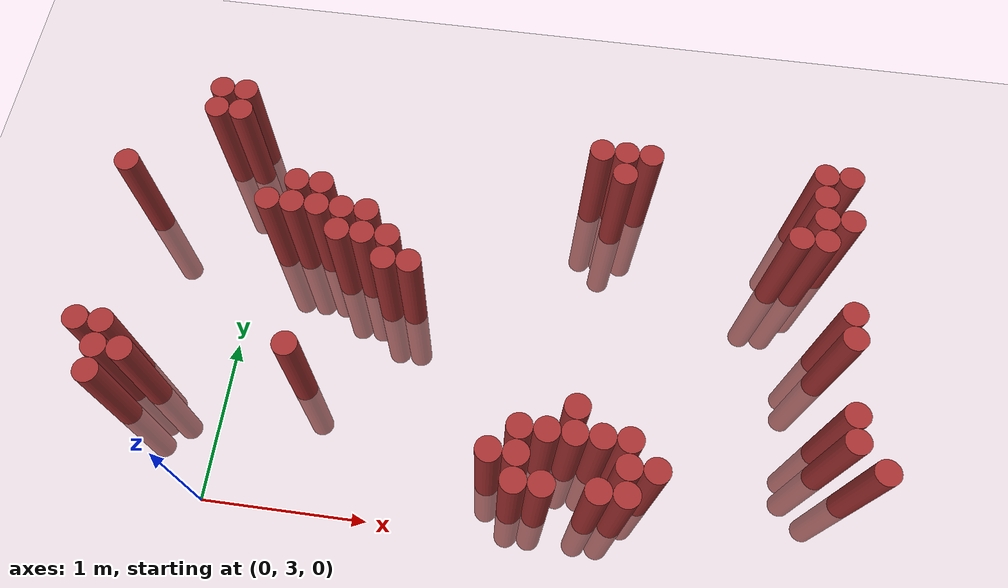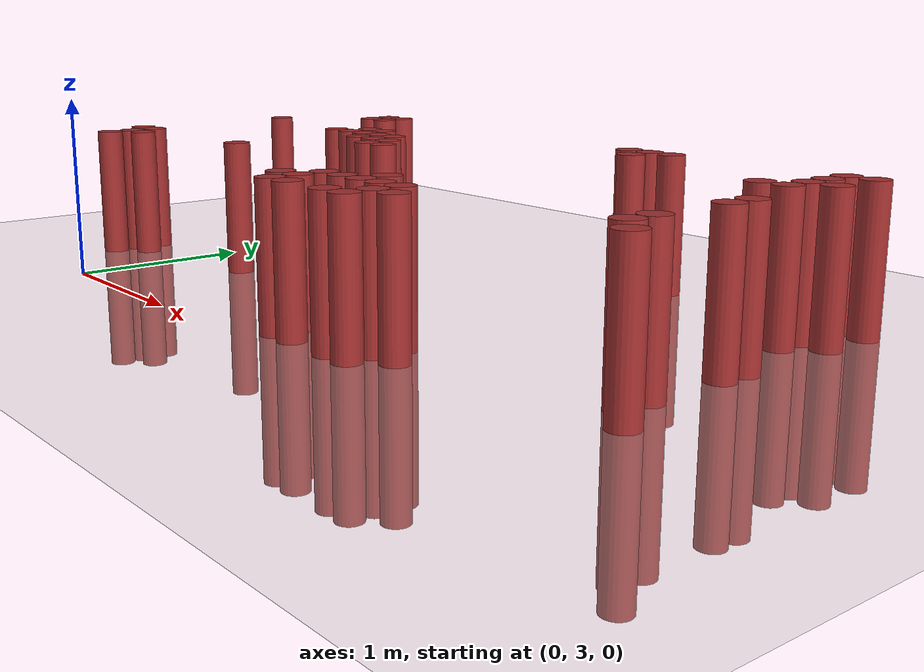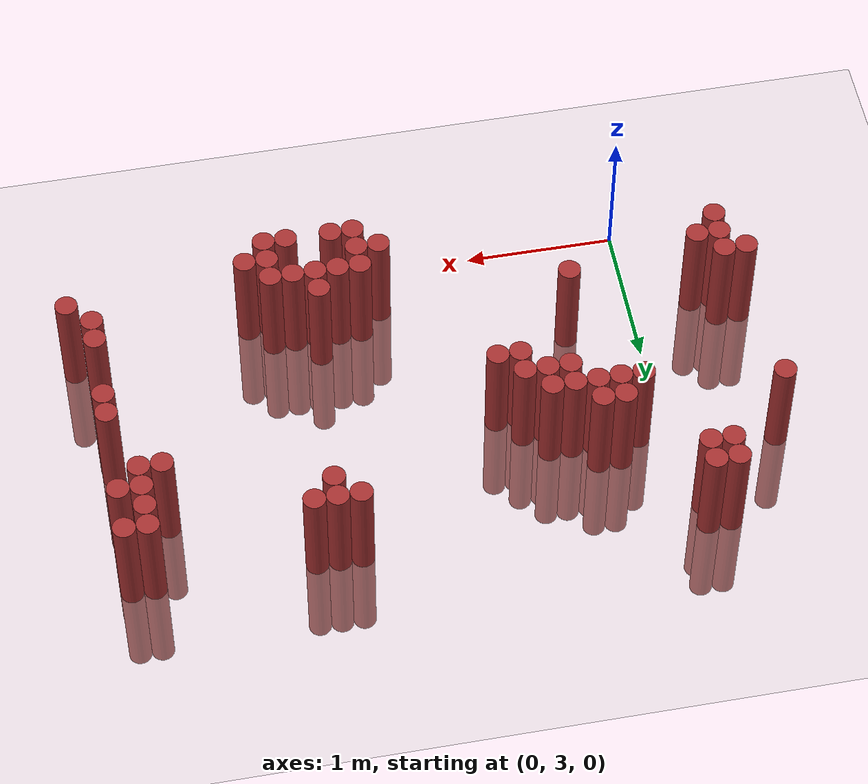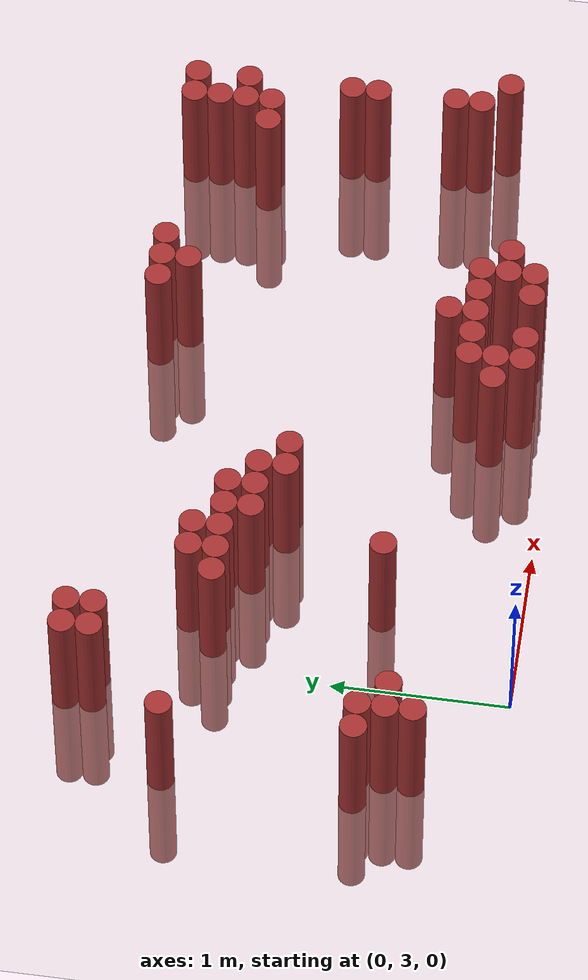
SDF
<sdf version="1.6">
 <world name="default">
  <model name="ground_plane">
   <static>1</static>
   <link name="link">
    <collision name="collision">
     <geometry><plane><normal>0 0 1</normal><size>100 100</size></plane></geometry>
     <surface><friction><ode><mu>100</mu><mu2>50</mu2></ode></friction></surface>
    </collision>
    <visual name="visual">
     <cast_shadows>0</cast_shadows>
     <geometry><plane><normal>0 0 1</normal><size>100 100</size></plane></geometry>
     <material>
      <script><uri>file://media/materials/scripts/gazebo.material</uri><name>Gazebo/Grey</name></script>
     </material>
    </visual>
   </link>
  </model>
  <model name="unit_cylinder_334">
   <static>1</static>
   <pose>-0.725000 3.775000 0.000000 0.000000 0.000000 0.000000</pose>
   <link name="link">
    <inertial>
     <mass>1</mass>
     <inertia><ixx>0.145833</ixx><ixy>0</ixy><ixz>0</ixz><iyy>0.145833</iyy><iyz>0</iyz><izz>0.125</izz></inertia>
    </inertial>
    <collision name="collision">
     <geometry><cylinder><radius>0.075000</radius><length>1.5</length></cylinder></geometry>
    </collision>
    <visual name="visual">
     <geometry><cylinder><radius>0.075000</radius><length>1.5</length></cylinder></geometry>
     <material>
      <ambient>0.648000 0.192000 0.192000 1</ambient>
      <diffuse>0.648000 0.192000 0.192000 1</diffuse>
     </material>
     <material>
      <script><name>Gazebo/Grey</name><uri>file://media/materials/scripts/gazebo.material</uri></script>
     </material>
    </visual>
   </link>
  </model>
  <model name="unit_cylinder_335">
   <static>1</static>
   <pose>-0.725000 4.825000 0.000000 0.000000 0.000000 0.000000</pose>
   <link name="link">
    <inertial>
     <mass>1</mass>
     <inertia><ixx>0.145833</ixx><ixy>0</ixy><ixz>0</ixz><iyy>0.145833</iyy><iyz>0</iyz><izz>0.125</izz></inertia>
    </inertial>
    <collision name="collision">
     <geometry><cylinder><radius>0.075000</radius><length>1.5</length></cylinder></geometry>
    </collision>
    <visual name="visual">
     <geometry><cylinder><radius>0.075000</radius><length>1.5</length></cylinder></geometry>
     <material>
      <ambient>0.648000 0.192000 0.192000 1</ambient>
      <diffuse>0.648000 0.192000 0.192000 1</diffuse>
     </material>
     <material>
      <script><name>Gazebo/Grey</name><uri>file://media/materials/scripts/gazebo.material</uri></script>
     </material>
    </visual>
   </link>
  </model>
  <model name="unit_cylinder_339">
   <static>1</static>
   <pose>-0.575000 3.475000 0.000000 0.000000 0.000000 0.000000</pose>
   <link name="link">
    <inertial>
     <mass>1</mass>
     <inertia><ixx>0.145833</ixx><ixy>0</ixy><ixz>0</ixz><iyy>0.145833</iyy><iyz>0</iyz><izz>0.125</izz></inertia>
    </inertial>
    <collision name="collision">
     <geometry><cylinder><radius>0.075000</radius><length>1.5</length></cylinder></geometry>
    </collision>
    <visual name="visual">
     <geometry><cylinder><radius>0.075000</radius><length>1.5</length></cylinder></geometry>
     <material>
      <ambient>0.648000 0.192000 0.192000 1</ambient>
      <diffuse>0.648000 0.192000 0.192000 1</diffuse>
     </material>
     <material>
      <script><name>Gazebo/Grey</name><uri>file://media/materials/scripts/gazebo.material</uri></script>
     </material>
    </visual>
   </link>
  </model>
  <model name="unit_cylinder_340">
   <static>1</static>
   <pose>-0.575000 3.625000 0.000000 0.000000 0.000000 0.000000</pose>
   <link name="link">
    <inertial>
     <mass>1</mass>
     <inertia><ixx>0.145833</ixx><ixy>0</ixy><ixz>0</ixz><iyy>0.145833</iyy><iyz>0</iyz><izz>0.125</izz></inertia>
    </inertial>
    <collision name="collision">
     <geometry><cylinder><radius>0.075000</radius><length>1.5</length></cylinder></geometry>
    </collision>
    <visual name="visual">
     <geometry><cylinder><radius>0.075000</radius><length>1.5</length></cylinder></geometry>
     <material>
      <ambient>0.648000 0.192000 0.192000 1</ambient>
      <diffuse>0.648000 0.192000 0.192000 1</diffuse>
     </material>
     <material>
      <script><name>Gazebo/Grey</name><uri>file://media/materials/scripts/gazebo.material</uri></script>
     </material>
    </visual>
   </link>
  </model>
  <model name="unit_cylinder_341">
   <static>1</static>
   <pose>-0.575000 3.775000 0.000000 0.000000 0.000000 0.000000</pose>
   <link name="link">
    <inertial>
     <mass>1</mass>
     <inertia><ixx>0.145833</ixx><ixy>0</ixy><ixz>0</ixz><iyy>0.145833</iyy><iyz>0</iyz><izz>0.125</izz></inertia>
    </inertial>
    <collision name="collision">
     <geometry><cylinder><radius>0.075000</radius><length>1.5</length></cylinder></geometry>
    </collision>
    <visual name="visual">
     <geometry><cylinder><radius>0.075000</radius><length>1.5</length></cylinder></geometry>
     <material>
      <ambient>0.648000 0.192000 0.192000 1</ambient>
      <diffuse>0.648000 0.192000 0.192000 1</diffuse>
     </material>
     <material>
      <script><name>Gazebo/Grey</name><uri>file://media/materials/scripts/gazebo.material</uri></script>
     </material>
    </visual>
   </link>
  </model>
  <model name="unit_cylinder_343">
   <static>1</static>
   <pose>-0.425000 3.625000 0.000000 0.000000 0.000000 0.000000</pose>
   <link name="link">
    <inertial>
     <mass>1</mass>
     <inertia><ixx>0.145833</ixx><ixy>0</ixy><ixz>0</ixz><iyy>0.145833</iyy><iyz>0</iyz><izz>0.125</izz></inertia>
    </inertial>
    <collision name="collision">
     <geometry><cylinder><radius>0.075000</radius><length>1.5</length></cylinder></geometry>
    </collision>
    <visual name="visual">
     <geometry><cylinder><radius>0.075000</radius><length>1.5</length></cylinder></geometry>
     <material>
      <ambient>0.648000 0.192000 0.192000 1</ambient>
      <diffuse>0.648000 0.192000 0.192000 1</diffuse>
     </material>
     <material>
      <script><name>Gazebo/Grey</name><uri>file://media/materials/scripts/gazebo.material</uri></script>
     </material>
    </visual>
   </link>
  </model>
  <model name="unit_cylinder_344">
   <static>1</static>
   <pose>-0.275000 5.275000 0.000000 0.000000 0.000000 0.000000</pose>
   <link name="link">
    <inertial>
     <mass>1</mass>
     <inertia><ixx>0.145833</ixx><ixy>0</ixy><ixz>0</ixz><iyy>0.145833</iyy><iyz>0</iyz><izz>0.125</izz></inertia>
    </inertial>
    <collision name="collision">
     <geometry><cylinder><radius>0.075000</radius><length>1.5</length></cylinder></geometry>
    </collision>
    <visual name="visual">
     <geometry><cylinder><radius>0.075000</radius><length>1.5</length></cylinder></geometry>
     <material>
      <ambient>0.648000 0.192000 0.192000 1</ambient>
      <diffuse>0.648000 0.192000 0.192000 1</diffuse>
     </material>
     <material>
      <script><name>Gazebo/Grey</name><uri>file://media/materials/scripts/gazebo.material</uri></script>
     </material>
    </visual>
   </link>
  </model>
  <model name="unit_cylinder_345">
   <static>1</static>
   <pose>-0.275000 5.425000 0.000000 0.000000 0.000000 0.000000</pose>
   <link name="link">
    <inertial>
     <mass>1</mass>
     <inertia><ixx>0.145833</ixx><ixy>0</ixy><ixz>0</ixz><iyy>0.145833</iyy><iyz>0</iyz><izz>0.125</izz></inertia>
    </inertial>
    <collision name="collision">
     <geometry><cylinder><radius>0.075000</radius><length>1.5</length></cylinder></geometry>
    </collision>
    <visual name="visual">
     <geometry><cylinder><radius>0.075000</radius><length>1.5</length></cylinder></geometry>
     <material>
      <ambient>0.648000 0.192000 0.192000 1</ambient>
      <diffuse>0.648000 0.192000 0.192000 1</diffuse>
     </material>
     <material>
      <script><name>Gazebo/Grey</name><uri>file://media/materials/scripts/gazebo.material</uri></script>
     </material>
    </visual>
   </link>
  </model>
  <model name="unit_cylinder_346">
   <static>1</static>
   <pose>-0.125000 5.275000 0.000000 0.000000 0.000000 0.000000</pose>
   <link name="link">
    <inertial>
     <mass>1</mass>
     <inertia><ixx>0.145833</ixx><ixy>0</ixy><ixz>0</ixz><iyy>0.145833</iyy><iyz>0</iyz><izz>0.125</izz></inertia>
    </inertial>
    <collision name="collision">
     <geometry><cylinder><radius>0.075000</radius><length>1.5</length></cylinder></geometry>
    </collision>
    <visual name="visual">
     <geometry><cylinder><radius>0.075000</radius><length>1.5</length></cylinder></geometry>
     <material>
      <ambient>0.648000 0.192000 0.192000 1</ambient>
      <diffuse>0.648000 0.192000 0.192000 1</diffuse>
     </material>
     <material>
      <script><name>Gazebo/Grey</name><uri>file://media/materials/scripts/gazebo.material</uri></script>
     </material>
    </visual>
   </link>
  </model>
  <model name="unit_cylinder_347">
   <static>1</static>
   <pose>-0.125000 5.425000 0.000000 0.000000 0.000000 0.000000</pose>
   <link name="link">
    <inertial>
     <mass>1</mass>
     <inertia><ixx>0.145833</ixx><ixy>0</ixy><ixz>0</ixz><iyy>0.145833</iyy><iyz>0</iyz><izz>0.125</izz></inertia>
    </inertial>
    <collision name="collision">
     <geometry><cylinder><radius>0.075000</radius><length>1.5</length></cylinder></geometry>
    </collision>
    <visual name="visual">
     <geometry><cylinder><radius>0.075000</radius><length>1.5</length></cylinder></geometry>
     <material>
      <ambient>0.648000 0.192000 0.192000 1</ambient>
      <diffuse>0.648000 0.192000 0.192000 1</diffuse>
     </material>
     <material>
      <script><name>Gazebo/Grey</name><uri>file://media/materials/scripts/gazebo.material</uri></script>
     </material>
    </visual>
   </link>
  </model>
  <model name="unit_cylinder_348">
   <static>1</static>
   <pose>0.175000 4.675000 0.000000 0.000000 0.000000 0.000000</pose>
   <link name="link">
    <inertial>
     <mass>1</mass>
     <inertia><ixx>0.145833</ixx><ixy>0</ixy><ixz>0</ixz><iyy>0.145833</iyy><iyz>0</iyz><izz>0.125</izz></inertia>
    </inertial>
    <collision name="collision">
     <geometry><cylinder><radius>0.075000</radius><length>1.5</length></cylinder></geometry>
    </collision>
    <visual name="visual">
     <geometry><cylinder><radius>0.075000</radius><length>1.5</length></cylinder></geometry>
     <material>
      <ambient>0.648000 0.192000 0.192000 1</ambient>
      <diffuse>0.648000 0.192000 0.192000 1</diffuse>
     </material>
     <material>
      <script><name>Gazebo/Grey</name><uri>file://media/materials/scripts/gazebo.material</uri></script>
     </material>
    </visual>
   </link>
  </model>
  <model name="unit_cylinder_349">
   <static>1</static>
   <pose>0.325000 4.675000 0.000000 0.000000 0.000000 0.000000</pose>
   <link name="link">
    <inertial>
     <mass>1</mass>
     <inertia><ixx>0.145833</ixx><ixy>0</ixy><ixz>0</ixz><iyy>0.145833</iyy><iyz>0</iyz><izz>0.125</izz></inertia>
    </inertial>
    <collision name="collision">
     <geometry><cylinder><radius>0.075000</radius><length>1.5</length></cylinder></geometry>
    </collision>
    <visual name="visual">
     <geometry><cylinder><radius>0.075000</radius><length>1.5</length></cylinder></geometry>
     <material>
      <ambient>0.648000 0.192000 0.192000 1</ambient>
      <diffuse>0.648000 0.192000 0.192000 1</diffuse>
     </material>
     <material>
      <script><name>Gazebo/Grey</name><uri>file://media/materials/scripts/gazebo.material</uri></script>
     </material>
    </visual>
   </link>
  </model>
  <model name="unit_cylinder_350">
   <static>1</static>
   <pose>0.325000 4.825000 0.000000 0.000000 0.000000 0.000000</pose>
   <link name="link">
    <inertial>
     <mass>1</mass>
     <inertia><ixx>0.145833</ixx><ixy>0</ixy><ixz>0</ixz><iyy>0.145833</iyy><iyz>0</iyz><izz>0.125</izz></inertia>
    </inertial>
    <collision name="collision">
     <geometry><cylinder><radius>0.075000</radius><length>1.5</length></cylinder></geometry>
    </collision>
    <visual name="visual">
     <geometry><cylinder><radius>0.075000</radius><length>1.5</length></cylinder></geometry>
     <material>
      <ambient>0.648000 0.192000 0.192000 1</ambient>
      <diffuse>0.648000 0.192000 0.192000 1</diffuse>
     </material>
     <material>
      <script><name>Gazebo/Grey</name><uri>file://media/materials/scripts/gazebo.material</uri></script>
     </material>
    </visual>
   </link>
  </model>
  <model name="unit_cylinder_351">
   <static>1</static>
   <pose>0.475000 3.775000 0.000000 0.000000 0.000000 0.000000</pose>
   <link name="link">
    <inertial>
     <mass>1</mass>
     <inertia><ixx>0.145833</ixx><ixy>0</ixy><ixz>0</ixz><iyy>0.145833</iyy><iyz>0</iyz><izz>0.125</izz></inertia>
    </inertial>
    <collision name="collision">
     <geometry><cylinder><radius>0.075000</radius><length>1.5</length></cylinder></geometry>
    </collision>
    <visual name="visual">
     <geometry><cylinder><radius>0.075000</radius><length>1.5</length></cylinder></geometry>
     <material>
      <ambient>0.648000 0.192000 0.192000 1</ambient>
      <diffuse>0.648000 0.192000 0.192000 1</diffuse>
     </material>
     <material>
      <script><name>Gazebo/Grey</name><uri>file://media/materials/scripts/gazebo.material</uri></script>
     </material>
    </visual>
   </link>
  </model>
  <model name="unit_cylinder_352">
   <static>1</static>
   <pose>0.475000 4.675000 0.000000 0.000000 0.000000 0.000000</pose>
   <link name="link">
    <inertial>
     <mass>1</mass>
     <inertia><ixx>0.145833</ixx><ixy>0</ixy><ixz>0</ixz><iyy>0.145833</iyy><iyz>0</iyz><izz>0.125</izz></inertia>
    </inertial>
    <collision name="collision">
     <geometry><cylinder><radius>0.075000</radius><length>1.5</length></cylinder></geometry>
    </collision>
    <visual name="visual">
     <geometry><cylinder><radius>0.075000</radius><length>1.5</length></cylinder></geometry>
     <material>
      <ambient>0.648000 0.192000 0.192000 1</ambient>
      <diffuse>0.648000 0.192000 0.192000 1</diffuse>
     </material>
     <material>
      <script><name>Gazebo/Grey</name><uri>file://media/materials/scripts/gazebo.material</uri></script>
     </material>
    </visual>
   </link>
  </model>
  <model name="unit_cylinder_353">
   <static>1</static>
   <pose>0.475000 4.825000 0.000000 0.000000 0.000000 0.000000</pose>
   <link name="link">
    <inertial>
     <mass>1</mass>
     <inertia><ixx>0.145833</ixx><ixy>0</ixy><ixz>0</ixz><iyy>0.145833</iyy><iyz>0</iyz><izz>0.125</izz></inertia>
    </inertial>
    <collision name="collision">
     <geometry><cylinder><radius>0.075000</radius><length>1.5</length></cylinder></geometry>
    </collision>
    <visual name="visual">
     <geometry><cylinder><radius>0.075000</radius><length>1.5</length></cylinder></geometry>
     <material>
      <ambient>0.648000 0.192000 0.192000 1</ambient>
      <diffuse>0.648000 0.192000 0.192000 1</diffuse>
     </material>
     <material>
      <script><name>Gazebo/Grey</name><uri>file://media/materials/scripts/gazebo.material</uri></script>
     </material>
    </visual>
   </link>
  </model>
  <model name="unit_cylinder_354">
   <static>1</static>
   <pose>0.625000 4.525000 0.000000 0.000000 0.000000 0.000000</pose>
   <link name="link">
    <inertial>
     <mass>1</mass>
     <inertia><ixx>0.145833</ixx><ixy>0</ixy><ixz>0</ixz><iyy>0.145833</iyy><iyz>0</iyz><izz>0.125</izz></inertia>
    </inertial>
    <collision name="collision">
     <geometry><cylinder><radius>0.075000</radius><length>1.5</length></cylinder></geometry>
    </collision>
    <visual name="visual">
     <geometry><cylinder><radius>0.075000</radius><length>1.5</length></cylinder></geometry>
     <material>
      <ambient>0.648000 0.192000 0.192000 1</ambient>
      <diffuse>0.648000 0.192000 0.192000 1</diffuse>
     </material>
     <material>
      <script><name>Gazebo/Grey</name><uri>file://media/materials/scripts/gazebo.material</uri></script>
     </material>
    </visual>
   </link>
  </model>
  <model name="unit_cylinder_355">
   <static>1</static>
   <pose>0.625000 4.675000 0.000000 0.000000 0.000000 0.000000</pose>
   <link name="link">
    <inertial>
     <mass>1</mass>
     <inertia><ixx>0.145833</ixx><ixy>0</ixy><ixz>0</ixz><iyy>0.145833</iyy><iyz>0</iyz><izz>0.125</izz></inertia>
    </inertial>
    <collision name="collision">
     <geometry><cylinder><radius>0.075000</radius><length>1.5</length></cylinder></geometry>
    </collision>
    <visual name="visual">
     <geometry><cylinder><radius>0.075000</radius><length>1.5</length></cylinder></geometry>
     <material>
      <ambient>0.648000 0.192000 0.192000 1</ambient>
      <diffuse>0.648000 0.192000 0.192000 1</diffuse>
     </material>
     <material>
      <script><name>Gazebo/Grey</name><uri>file://media/materials/scripts/gazebo.material</uri></script>
     </material>
    </visual>
   </link>
  </model>
  <model name="unit_cylinder_358">
   <static>1</static>
   <pose>0.775000 4.525000 0.000000 0.000000 0.000000 0.000000</pose>
   <link name="link">
    <inertial>
     <mass>1</mass>
     <inertia><ixx>0.145833</ixx><ixy>0</ixy><ixz>0</ixz><iyy>0.145833</iyy><iyz>0</iyz><izz>0.125</izz></inertia>
    </inertial>
    <collision name="collision">
     <geometry><cylinder><radius>0.075000</radius><length>1.5</length></cylinder></geometry>
    </collision>
    <visual name="visual">
     <geometry><cylinder><radius>0.075000</radius><length>1.5</length></cylinder></geometry>
     <material>
      <ambient>0.648000 0.192000 0.192000 1</ambient>
      <diffuse>0.648000 0.192000 0.192000 1</diffuse>
     </material>
     <material>
      <script><name>Gazebo/Grey</name><uri>file://media/materials/scripts/gazebo.material</uri></script>
     </material>
    </visual>
   </link>
  </model>
  <model name="unit_cylinder_359">
   <static>1</static>
   <pose>0.775000 4.675000 0.000000 0.000000 0.000000 0.000000</pose>
   <link name="link">
    <inertial>
     <mass>1</mass>
     <inertia><ixx>0.145833</ixx><ixy>0</ixy><ixz>0</ixz><iyy>0.145833</iyy><iyz>0</iyz><izz>0.125</izz></inertia>
    </inertial>
    <collision name="collision">
     <geometry><cylinder><radius>0.075000</radius><length>1.5</length></cylinder></geometry>
    </collision>
    <visual name="visual">
     <geometry><cylinder><radius>0.075000</radius><length>1.5</length></cylinder></geometry>
     <material>
      <ambient>0.648000 0.192000 0.192000 1</ambient>
      <diffuse>0.648000 0.192000 0.192000 1</diffuse>
     </material>
     <material>
      <script><name>Gazebo/Grey</name><uri>file://media/materials/scripts/gazebo.material</uri></script>
     </material>
    </visual>
   </link>
  </model>
  <model name="unit_cylinder_363">
   <static>1</static>
   <pose>0.925000 4.375000 0.000000 0.000000 0.000000 0.000000</pose>
   <link name="link">
    <inertial>
     <mass>1</mass>
     <inertia><ixx>0.145833</ixx><ixy>0</ixy><ixz>0</ixz><iyy>0.145833</iyy><iyz>0</iyz><izz>0.125</izz></inertia>
    </inertial>
    <collision name="collision">
     <geometry><cylinder><radius>0.075000</radius><length>1.5</length></cylinder></geometry>
    </collision>
    <visual name="visual">
     <geometry><cylinder><radius>0.075000</radius><length>1.5</length></cylinder></geometry>
     <material>
      <ambient>0.648000 0.192000 0.192000 1</ambient>
      <diffuse>0.648000 0.192000 0.192000 1</diffuse>
     </material>
     <material>
      <script><name>Gazebo/Grey</name><uri>file://media/materials/scripts/gazebo.material</uri></script>
     </material>
    </visual>
   </link>
  </model>
  <model name="unit_cylinder_364">
   <static>1</static>
   <pose>0.925000 4.525000 0.000000 0.000000 0.000000 0.000000</pose>
   <link name="link">
    <inertial>
     <mass>1</mass>
     <inertia><ixx>0.145833</ixx><ixy>0</ixy><ixz>0</ixz><iyy>0.145833</iyy><iyz>0</iyz><izz>0.125</izz></inertia>
    </inertial>
    <collision name="collision">
     <geometry><cylinder><radius>0.075000</radius><length>1.5</length></cylinder></geometry>
    </collision>
    <visual name="visual">
     <geometry><cylinder><radius>0.075000</radius><length>1.5</length></cylinder></geometry>
     <material>
      <ambient>0.648000 0.192000 0.192000 1</ambient>
      <diffuse>0.648000 0.192000 0.192000 1</diffuse>
     </material>
     <material>
      <script><name>Gazebo/Grey</name><uri>file://media/materials/scripts/gazebo.material</uri></script>
     </material>
    </visual>
   </link>
  </model>
  <model name="unit_cylinder_366">
   <static>1</static>
   <pose>1.075000 4.375000 0.000000 0.000000 0.000000 0.000000</pose>
   <link name="link">
    <inertial>
     <mass>1</mass>
     <inertia><ixx>0.145833</ixx><ixy>0</ixy><ixz>0</ixz><iyy>0.145833</iyy><iyz>0</iyz><izz>0.125</izz></inertia>
    </inertial>
    <collision name="collision">
     <geometry><cylinder><radius>0.075000</radius><length>1.5</length></cylinder></geometry>
    </collision>
    <visual name="visual">
     <geometry><cylinder><radius>0.075000</radius><length>1.5</length></cylinder></geometry>
     <material>
      <ambient>0.648000 0.192000 0.192000 1</ambient>
      <diffuse>0.648000 0.192000 0.192000 1</diffuse>
     </material>
     <material>
      <script><name>Gazebo/Grey</name><uri>file://media/materials/scripts/gazebo.material</uri></script>
     </material>
    </visual>
   </link>
  </model>
  <model name="unit_cylinder_383">
   <static>1</static>
   <pose>1.675000 3.325000 0.000000 0.000000 0.000000 0.000000</pose>
   <link name="link">
    <inertial>
     <mass>1</mass>
     <inertia><ixx>0.145833</ixx><ixy>0</ixy><ixz>0</ixz><iyy>0.145833</iyy><iyz>0</iyz><izz>0.125</izz></inertia>
    </inertial>
    <collision name="collision">
     <geometry><cylinder><radius>0.075000</radius><length>1.5</length></cylinder></geometry>
    </collision>
    <visual name="visual">
     <geometry><cylinder><radius>0.075000</radius><length>1.5</length></cylinder></geometry>
     <material>
      <ambient>0.648000 0.192000 0.192000 1</ambient>
      <diffuse>0.648000 0.192000 0.192000 1</diffuse>
     </material>
     <material>
      <script><name>Gazebo/Grey</name><uri>file://media/materials/scripts/gazebo.material</uri></script>
     </material>
    </visual>
   </link>
  </model>
  <model name="unit_cylinder_390">
   <static>1</static>
   <pose>1.825000 3.175000 0.000000 0.000000 0.000000 0.000000</pose>
   <link name="link">
    <inertial>
     <mass>1</mass>
     <inertia><ixx>0.145833</ixx><ixy>0</ixy><ixz>0</ixz><iyy>0.145833</iyy><iyz>0</iyz><izz>0.125</izz></inertia>
    </inertial>
    <collision name="collision">
     <geometry><cylinder><radius>0.075000</radius><length>1.5</length></cylinder></geometry>
    </collision>
    <visual name="visual">
     <geometry><cylinder><radius>0.075000</radius><length>1.5</length></cylinder></geometry>
     <material>
      <ambient>0.648000 0.192000 0.192000 1</ambient>
      <diffuse>0.648000 0.192000 0.192000 1</diffuse>
     </material>
     <material>
      <script><name>Gazebo/Grey</name><uri>file://media/materials/scripts/gazebo.material</uri></script>
     </material>
    </visual>
   </link>
  </model>
  <model name="unit_cylinder_391">
   <static>1</static>
   <pose>1.825000 3.325000 0.000000 0.000000 0.000000 0.000000</pose>
   <link name="link">
    <inertial>
     <mass>1</mass>
     <inertia><ixx>0.145833</ixx><ixy>0</ixy><ixz>0</ixz><iyy>0.145833</iyy><iyz>0</iyz><izz>0.125</izz></inertia>
    </inertial>
    <collision name="collision">
     <geometry><cylinder><radius>0.075000</radius><length>1.5</length></cylinder></geometry>
    </collision>
    <visual name="visual">
     <geometry><cylinder><radius>0.075000</radius><length>1.5</length></cylinder></geometry>
     <material>
      <ambient>0.648000 0.192000 0.192000 1</ambient>
      <diffuse>0.648000 0.192000 0.192000 1</diffuse>
     </material>
     <material>
      <script><name>Gazebo/Grey</name><uri>file://media/materials/scripts/gazebo.material</uri></script>
     </material>
    </visual>
   </link>
  </model>
  <model name="unit_cylinder_392">
   <static>1</static>
   <pose>1.825000 3.475000 0.000000 0.000000 0.000000 0.000000</pose>
   <link name="link">
    <inertial>
     <mass>1</mass>
     <inertia><ixx>0.145833</ixx><ixy>0</ixy><ixz>0</ixz><iyy>0.145833</iyy><iyz>0</iyz><izz>0.125</izz></inertia>
    </inertial>
    <collision name="collision">
     <geometry><cylinder><radius>0.075000</radius><length>1.5</length></cylinder></geometry>
    </collision>
    <visual name="visual">
     <geometry><cylinder><radius>0.075000</radius><length>1.5</length></cylinder></geometry>
     <material>
      <ambient>0.648000 0.192000 0.192000 1</ambient>
      <diffuse>0.648000 0.192000 0.192000 1</diffuse>
     </material>
     <material>
      <script><name>Gazebo/Grey</name><uri>file://media/materials/scripts/gazebo.material</uri></script>
     </material>
    </visual>
   </link>
  </model>
  <model name="unit_cylinder_398">
   <static>1</static>
   <pose>1.975000 3.175000 0.000000 0.000000 0.000000 0.000000</pose>
   <link name="link">
    <inertial>
     <mass>1</mass>
     <inertia><ixx>0.145833</ixx><ixy>0</ixy><ixz>0</ixz><iyy>0.145833</iyy><iyz>0</iyz><izz>0.125</izz></inertia>
    </inertial>
    <collision name="collision">
     <geometry><cylinder><radius>0.075000</radius><length>1.5</length></cylinder></geometry>
    </collision>
    <visual name="visual">
     <geometry><cylinder><radius>0.075000</radius><length>1.5</length></cylinder></geometry>
     <material>
      <ambient>0.648000 0.192000 0.192000 1</ambient>
      <diffuse>0.648000 0.192000 0.192000 1</diffuse>
     </material>
     <material>
      <script><name>Gazebo/Grey</name><uri>file://media/materials/scripts/gazebo.material</uri></script>
     </material>
    </visual>
   </link>
  </model>
  <model name="unit_cylinder_399">
   <static>1</static>
   <pose>1.975000 3.475000 0.000000 0.000000 0.000000 0.000000</pose>
   <link name="link">
    <inertial>
     <mass>1</mass>
     <inertia><ixx>0.145833</ixx><ixy>0</ixy><ixz>0</ixz><iyy>0.145833</iyy><iyz>0</iyz><izz>0.125</izz></inertia>
    </inertial>
    <collision name="collision">
     <geometry><cylinder><radius>0.075000</radius><length>1.5</length></cylinder></geometry>
    </collision>
    <visual name="visual">
     <geometry><cylinder><radius>0.075000</radius><length>1.5</length></cylinder></geometry>
     <material>
      <ambient>0.648000 0.192000 0.192000 1</ambient>
      <diffuse>0.648000 0.192000 0.192000 1</diffuse>
     </material>
     <material>
      <script><name>Gazebo/Grey</name><uri>file://media/materials/scripts/gazebo.material</uri></script>
     </material>
    </visual>
   </link>
  </model>
  <model name="unit_cylinder_402">
   <static>1</static>
   <pose>2.125000 3.475000 0.000000 0.000000 0.000000 0.000000</pose>
   <link name="link">
    <inertial>
     <mass>1</mass>
     <inertia><ixx>0.145833</ixx><ixy>0</ixy><ixz>0</ixz><iyy>0.145833</iyy><iyz>0</iyz><izz>0.125</izz></inertia>
    </inertial>
    <collision name="collision">
     <geometry><cylinder><radius>0.075000</radius><length>1.5</length></cylinder></geometry>
    </collision>
    <visual name="visual">
     <geometry><cylinder><radius>0.075000</radius><length>1.5</length></cylinder></geometry>
     <material>
      <ambient>0.648000 0.192000 0.192000 1</ambient>
      <diffuse>0.648000 0.192000 0.192000 1</diffuse>
     </material>
     <material>
      <script><name>Gazebo/Grey</name><uri>file://media/materials/scripts/gazebo.material</uri></script>
     </material>
    </visual>
   </link>
  </model>
  <model name="unit_cylinder_403">
   <static>1</static>
   <pose>2.125000 3.625000 0.000000 0.000000 0.000000 0.000000</pose>
   <link name="link">
    <inertial>
     <mass>1</mass>
     <inertia><ixx>0.145833</ixx><ixy>0</ixy><ixz>0</ixz><iyy>0.145833</iyy><iyz>0</iyz><izz>0.125</izz></inertia>
    </inertial>
    <collision name="collision">
     <geometry><cylinder><radius>0.075000</radius><length>1.5</length></cylinder></geometry>
    </collision>
    <visual name="visual">
     <geometry><cylinder><radius>0.075000</radius><length>1.5</length></cylinder></geometry>
     <material>
      <ambient>0.648000 0.192000 0.192000 1</ambient>
      <diffuse>0.648000 0.192000 0.192000 1</diffuse>
     </material>
     <material>
      <script><name>Gazebo/Grey</name><uri>file://media/materials/scripts/gazebo.material</uri></script>
     </material>
    </visual>
   </link>
  </model>
  <model name="unit_cylinder_404">
   <static>1</static>
   <pose>2.125000 5.275000 0.000000 0.000000 0.000000 0.000000</pose>
   <link name="link">
    <inertial>
     <mass>1</mass>
     <inertia><ixx>0.145833</ixx><ixy>0</ixy><ixz>0</ixz><iyy>0.145833</iyy><iyz>0</iyz><izz>0.125</izz></inertia>
    </inertial>
    <collision name="collision">
     <geometry><cylinder><radius>0.075000</radius><length>1.5</length></cylinder></geometry>
    </collision>
    <visual name="visual">
     <geometry><cylinder><radius>0.075000</radius><length>1.5</length></cylinder></geometry>
     <material>
      <ambient>0.648000 0.192000 0.192000 1</ambient>
      <diffuse>0.648000 0.192000 0.192000 1</diffuse>
     </material>
     <material>
      <script><name>Gazebo/Grey</name><uri>file://media/materials/scripts/gazebo.material</uri></script>
     </material>
    </visual>
   </link>
  </model>
  <model name="unit_cylinder_406">
   <static>1</static>
   <pose>2.275000 3.175000 0.000000 0.000000 0.000000 0.000000</pose>
   <link name="link">
    <inertial>
     <mass>1</mass>
     <inertia><ixx>0.145833</ixx><ixy>0</ixy><ixz>0</ixz><iyy>0.145833</iyy><iyz>0</iyz><izz>0.125</izz></inertia>
    </inertial>
    <collision name="collision">
     <geometry><cylinder><radius>0.075000</radius><length>1.5</length></cylinder></geometry>
    </collision>
    <visual name="visual">
     <geometry><cylinder><radius>0.075000</radius><length>1.5</length></cylinder></geometry>
     <material>
      <ambient>0.648000 0.192000 0.192000 1</ambient>
      <diffuse>0.648000 0.192000 0.192000 1</diffuse>
     </material>
     <material>
      <script><name>Gazebo/Grey</name><uri>file://media/materials/scripts/gazebo.material</uri></script>
     </material>
    </visual>
   </link>
  </model>
  <model name="unit_cylinder_407">
   <static>1</static>
   <pose>2.275000 3.475000 0.000000 0.000000 0.000000 0.000000</pose>
   <link name="link">
    <inertial>
     <mass>1</mass>
     <inertia><ixx>0.145833</ixx><ixy>0</ixy><ixz>0</ixz><iyy>0.145833</iyy><iyz>0</iyz><izz>0.125</izz></inertia>
    </inertial>
    <collision name="collision">
     <geometry><cylinder><radius>0.075000</radius><length>1.5</length></cylinder></geometry>
    </collision>
    <visual name="visual">
     <geometry><cylinder><radius>0.075000</radius><length>1.5</length></cylinder></geometry>
     <material>
      <ambient>0.648000 0.192000 0.192000 1</ambient>
      <diffuse>0.648000 0.192000 0.192000 1</diffuse>
     </material>
     <material>
      <script><name>Gazebo/Grey</name><uri>file://media/materials/scripts/gazebo.material</uri></script>
     </material>
    </visual>
   </link>
  </model>
  <model name="unit_cylinder_408">
   <static>1</static>
   <pose>2.275000 5.125000 0.000000 0.000000 0.000000 0.000000</pose>
   <link name="link">
    <inertial>
     <mass>1</mass>
     <inertia><ixx>0.145833</ixx><ixy>0</ixy><ixz>0</ixz><iyy>0.145833</iyy><iyz>0</iyz><izz>0.125</izz></inertia>
    </inertial>
    <collision name="collision">
     <geometry><cylinder><radius>0.075000</radius><length>1.5</length></cylinder></geometry>
    </collision>
    <visual name="visual">
     <geometry><cylinder><radius>0.075000</radius><length>1.5</length></cylinder></geometry>
     <material>
      <ambient>0.648000 0.192000 0.192000 1</ambient>
      <diffuse>0.648000 0.192000 0.192000 1</diffuse>
     </material>
     <material>
      <script><name>Gazebo/Grey</name><uri>file://media/materials/scripts/gazebo.material</uri></script>
     </material>
    </visual>
   </link>
  </model>
  <model name="unit_cylinder_409">
   <static>1</static>
   <pose>2.275000 5.275000 0.000000 0.000000 0.000000 0.000000</pose>
   <link name="link">
    <inertial>
     <mass>1</mass>
     <inertia><ixx>0.145833</ixx><ixy>0</ixy><ixz>0</ixz><iyy>0.145833</iyy><iyz>0</iyz><izz>0.125</izz></inertia>
    </inertial>
    <collision name="collision">
     <geometry><cylinder><radius>0.075000</radius><length>1.5</length></cylinder></geometry>
    </collision>
    <visual name="visual">
     <geometry><cylinder><radius>0.075000</radius><length>1.5</length></cylinder></geometry>
     <material>
      <ambient>0.648000 0.192000 0.192000 1</ambient>
      <diffuse>0.648000 0.192000 0.192000 1</diffuse>
     </material>
     <material>
      <script><name>Gazebo/Grey</name><uri>file://media/materials/scripts/gazebo.material</uri></script>
     </material>
    </visual>
   </link>
  </model>
  <model name="unit_cylinder_411">
   <static>1</static>
   <pose>2.425000 3.175000 0.000000 0.000000 0.000000 0.000000</pose>
   <link name="link">
    <inertial>
     <mass>1</mass>
     <inertia><ixx>0.145833</ixx><ixy>0</ixy><ixz>0</ixz><iyy>0.145833</iyy><iyz>0</iyz><izz>0.125</izz></inertia>
    </inertial>
    <collision name="collision">
     <geometry><cylinder><radius>0.075000</radius><length>1.5</length></cylinder></geometry>
    </collision>
    <visual name="visual">
     <geometry><cylinder><radius>0.075000</radius><length>1.5</length></cylinder></geometry>
     <material>
      <ambient>0.648000 0.192000 0.192000 1</ambient>
      <diffuse>0.648000 0.192000 0.192000 1</diffuse>
     </material>
     <material>
      <script><name>Gazebo/Grey</name><uri>file://media/materials/scripts/gazebo.material</uri></script>
     </material>
    </visual>
   </link>
  </model>
  <model name="unit_cylinder_412">
   <static>1</static>
   <pose>2.425000 3.325000 0.000000 0.000000 0.000000 0.000000</pose>
   <link name="link">
    <inertial>
     <mass>1</mass>
     <inertia><ixx>0.145833</ixx><ixy>0</ixy><ixz>0</ixz><iyy>0.145833</iyy><iyz>0</iyz><izz>0.125</izz></inertia>
    </inertial>
    <collision name="collision">
     <geometry><cylinder><radius>0.075000</radius><length>1.5</length></cylinder></geometry>
    </collision>
    <visual name="visual">
     <geometry><cylinder><radius>0.075000</radius><length>1.5</length></cylinder></geometry>
     <material>
      <ambient>0.648000 0.192000 0.192000 1</ambient>
      <diffuse>0.648000 0.192000 0.192000 1</diffuse>
     </material>
     <material>
      <script><name>Gazebo/Grey</name><uri>file://media/materials/scripts/gazebo.material</uri></script>
     </material>
    </visual>
   </link>
  </model>
  <model name="unit_cylinder_413">
   <static>1</static>
   <pose>2.425000 3.475000 0.000000 0.000000 0.000000 0.000000</pose>
   <link name="link">
    <inertial>
     <mass>1</mass>
     <inertia><ixx>0.145833</ixx><ixy>0</ixy><ixz>0</ixz><iyy>0.145833</iyy><iyz>0</iyz><izz>0.125</izz></inertia>
    </inertial>
    <collision name="collision">
     <geometry><cylinder><radius>0.075000</radius><length>1.5</length></cylinder></geometry>
    </collision>
    <visual name="visual">
     <geometry><cylinder><radius>0.075000</radius><length>1.5</length></cylinder></geometry>
     <material>
      <ambient>0.648000 0.192000 0.192000 1</ambient>
      <diffuse>0.648000 0.192000 0.192000 1</diffuse>
     </material>
     <material>
      <script><name>Gazebo/Grey</name><uri>file://media/materials/scripts/gazebo.material</uri></script>
     </material>
    </visual>
   </link>
  </model>
  <model name="unit_cylinder_414">
   <static>1</static>
   <pose>2.425000 5.275000 0.000000 0.000000 0.000000 0.000000</pose>
   <link name="link">
    <inertial>
     <mass>1</mass>
     <inertia><ixx>0.145833</ixx><ixy>0</ixy><ixz>0</ixz><iyy>0.145833</iyy><iyz>0</iyz><izz>0.125</izz></inertia>
    </inertial>
    <collision name="collision">
     <geometry><cylinder><radius>0.075000</radius><length>1.5</length></cylinder></geometry>
    </collision>
    <visual name="visual">
     <geometry><cylinder><radius>0.075000</radius><length>1.5</length></cylinder></geometry>
     <material>
      <ambient>0.648000 0.192000 0.192000 1</ambient>
      <diffuse>0.648000 0.192000 0.192000 1</diffuse>
     </material>
     <material>
      <script><name>Gazebo/Grey</name><uri>file://media/materials/scripts/gazebo.material</uri></script>
     </material>
    </visual>
   </link>
  </model>
  <model name="unit_cylinder_417">
   <static>1</static>
   <pose>2.575000 3.325000 0.000000 0.000000 0.000000 0.000000</pose>
   <link name="link">
    <inertial>
     <mass>1</mass>
     <inertia><ixx>0.145833</ixx><ixy>0</ixy><ixz>0</ixz><iyy>0.145833</iyy><iyz>0</iyz><izz>0.125</izz></inertia>
    </inertial>
    <collision name="collision">
     <geometry><cylinder><radius>0.075000</radius><length>1.5</length></cylinder></geometry>
    </collision>
    <visual name="visual">
     <geometry><cylinder><radius>0.075000</radius><length>1.5</length></cylinder></geometry>
     <material>
      <ambient>0.648000 0.192000 0.192000 1</ambient>
      <diffuse>0.648000 0.192000 0.192000 1</diffuse>
     </material>
     <material>
      <script><name>Gazebo/Grey</name><uri>file://media/materials/scripts/gazebo.material</uri></script>
     </material>
    </visual>
   </link>
  </model>
  <model name="unit_cylinder_438">
   <static>1</static>
   <pose>3.325000 4.825000 0.000000 0.000000 0.000000 0.000000</pose>
   <link name="link">
    <inertial>
     <mass>1</mass>
     <inertia><ixx>0.145833</ixx><ixy>0</ixy><ixz>0</ixz><iyy>0.145833</iyy><iyz>0</iyz><izz>0.125</izz></inertia>
    </inertial>
    <collision name="collision">
     <geometry><cylinder><radius>0.075000</radius><length>1.5</length></cylinder></geometry>
    </collision>
    <visual name="visual">
     <geometry><cylinder><radius>0.075000</radius><length>1.5</length></cylinder></geometry>
     <material>
      <ambient>0.648000 0.192000 0.192000 1</ambient>
      <diffuse>0.648000 0.192000 0.192000 1</diffuse>
     </material>
     <material>
      <script><name>Gazebo/Grey</name><uri>file://media/materials/scripts/gazebo.material</uri></script>
     </material>
    </visual>
   </link>
  </model>
  <model name="unit_cylinder_443">
   <static>1</static>
   <pose>3.475000 4.825000 0.000000 0.000000 0.000000 0.000000</pose>
   <link name="link">
    <inertial>
     <mass>1</mass>
     <inertia><ixx>0.145833</ixx><ixy>0</ixy><ixz>0</ixz><iyy>0.145833</iyy><iyz>0</iyz><izz>0.125</izz></inertia>
    </inertial>
    <collision name="collision">
     <geometry><cylinder><radius>0.075000</radius><length>1.5</length></cylinder></geometry>
    </collision>
    <visual name="visual">
     <geometry><cylinder><radius>0.075000</radius><length>1.5</length></cylinder></geometry>
     <material>
      <ambient>0.648000 0.192000 0.192000 1</ambient>
      <diffuse>0.648000 0.192000 0.192000 1</diffuse>
     </material>
     <material>
      <script><name>Gazebo/Grey</name><uri>file://media/materials/scripts/gazebo.material</uri></script>
     </material>
    </visual>
   </link>
  </model>
  <model name="unit_cylinder_444">
   <static>1</static>
   <pose>3.475000 4.975000 0.000000 0.000000 0.000000 0.000000</pose>
   <link name="link">
    <inertial>
     <mass>1</mass>
     <inertia><ixx>0.145833</ixx><ixy>0</ixy><ixz>0</ixz><iyy>0.145833</iyy><iyz>0</iyz><izz>0.125</izz></inertia>
    </inertial>
    <collision name="collision">
     <geometry><cylinder><radius>0.075000</radius><length>1.5</length></cylinder></geometry>
    </collision>
    <visual name="visual">
     <geometry><cylinder><radius>0.075000</radius><length>1.5</length></cylinder></geometry>
     <material>
      <ambient>0.648000 0.192000 0.192000 1</ambient>
      <diffuse>0.648000 0.192000 0.192000 1</diffuse>
     </material>
     <material>
      <script><name>Gazebo/Grey</name><uri>file://media/materials/scripts/gazebo.material</uri></script>
     </material>
    </visual>
   </link>
  </model>
  <model name="unit_cylinder_445">
   <static>1</static>
   <pose>3.475000 5.125000 0.000000 0.000000 0.000000 0.000000</pose>
   <link name="link">
    <inertial>
     <mass>1</mass>
     <inertia><ixx>0.145833</ixx><ixy>0</ixy><ixz>0</ixz><iyy>0.145833</iyy><iyz>0</iyz><izz>0.125</izz></inertia>
    </inertial>
    <collision name="collision">
     <geometry><cylinder><radius>0.075000</radius><length>1.5</length></cylinder></geometry>
    </collision>
    <visual name="visual">
     <geometry><cylinder><radius>0.075000</radius><length>1.5</length></cylinder></geometry>
     <material>
      <ambient>0.648000 0.192000 0.192000 1</ambient>
      <diffuse>0.648000 0.192000 0.192000 1</diffuse>
     </material>
     <material>
      <script><name>Gazebo/Grey</name><uri>file://media/materials/scripts/gazebo.material</uri></script>
     </material>
    </visual>
   </link>
  </model>
  <model name="unit_cylinder_446">
   <static>1</static>
   <pose>3.475000 5.275000 0.000000 0.000000 0.000000 0.000000</pose>
   <link name="link">
    <inertial>
     <mass>1</mass>
     <inertia><ixx>0.145833</ixx><ixy>0</ixy><ixz>0</ixz><iyy>0.145833</iyy><iyz>0</iyz><izz>0.125</izz></inertia>
    </inertial>
    <collision name="collision">
     <geometry><cylinder><radius>0.075000</radius><length>1.5</length></cylinder></geometry>
    </collision>
    <visual name="visual">
     <geometry><cylinder><radius>0.075000</radius><length>1.5</length></cylinder></geometry>
     <material>
      <ambient>0.648000 0.192000 0.192000 1</ambient>
      <diffuse>0.648000 0.192000 0.192000 1</diffuse>
     </material>
     <material>
      <script><name>Gazebo/Grey</name><uri>file://media/materials/scripts/gazebo.material</uri></script>
     </material>
    </visual>
   </link>
  </model>
  <model name="unit_cylinder_452">
   <static>1</static>
   <pose>3.625000 3.625000 0.000000 0.000000 0.000000 0.000000</pose>
   <link name="link">
    <inertial>
     <mass>1</mass>
     <inertia><ixx>0.145833</ixx><ixy>0</ixy><ixz>0</ixz><iyy>0.145833</iyy><iyz>0</iyz><izz>0.125</izz></inertia>
    </inertial>
    <collision name="collision">
     <geometry><cylinder><radius>0.075000</radius><length>1.5</length></cylinder></geometry>
    </collision>
    <visual name="visual">
     <geometry><cylinder><radius>0.075000</radius><length>1.5</length></cylinder></geometry>
     <material>
      <ambient>0.648000 0.192000 0.192000 1</ambient>
      <diffuse>0.648000 0.192000 0.192000 1</diffuse>
     </material>
     <material>
      <script><name>Gazebo/Grey</name><uri>file://media/materials/scripts/gazebo.material</uri></script>
     </material>
    </visual>
   </link>
  </model>
  <model name="unit_cylinder_453">
   <static>1</static>
   <pose>3.625000 3.775000 0.000000 0.000000 0.000000 0.000000</pose>
   <link name="link">
    <inertial>
     <mass>1</mass>
     <inertia><ixx>0.145833</ixx><ixy>0</ixy><ixz>0</ixz><iyy>0.145833</iyy><iyz>0</iyz><izz>0.125</izz></inertia>
    </inertial>
    <collision name="collision">
     <geometry><cylinder><radius>0.075000</radius><length>1.5</length></cylinder></geometry>
    </collision>
    <visual name="visual">
     <geometry><cylinder><radius>0.075000</radius><length>1.5</length></cylinder></geometry>
     <material>
      <ambient>0.648000 0.192000 0.192000 1</ambient>
      <diffuse>0.648000 0.192000 0.192000 1</diffuse>
     </material>
     <material>
      <script><name>Gazebo/Grey</name><uri>file://media/materials/scripts/gazebo.material</uri></script>
     </material>
    </visual>
   </link>
  </model>
  <model name="unit_cylinder_454">
   <static>1</static>
   <pose>3.625000 4.225000 0.000000 0.000000 0.000000 0.000000</pose>
   <link name="link">
    <inertial>
     <mass>1</mass>
     <inertia><ixx>0.145833</ixx><ixy>0</ixy><ixz>0</ixz><iyy>0.145833</iyy><iyz>0</iyz><izz>0.125</izz></inertia>
    </inertial>
    <collision name="collision">
     <geometry><cylinder><radius>0.075000</radius><length>1.5</length></cylinder></geometry>
    </collision>
    <visual name="visual">
     <geometry><cylinder><radius>0.075000</radius><length>1.5</length></cylinder></geometry>
     <material>
      <ambient>0.648000 0.192000 0.192000 1</ambient>
      <diffuse>0.648000 0.192000 0.192000 1</diffuse>
     </material>
     <material>
      <script><name>Gazebo/Grey</name><uri>file://media/materials/scripts/gazebo.material</uri></script>
     </material>
    </visual>
   </link>
  </model>
  <model name="unit_cylinder_455">
   <static>1</static>
   <pose>3.625000 4.375000 0.000000 0.000000 0.000000 0.000000</pose>
   <link name="link">
    <inertial>
     <mass>1</mass>
     <inertia><ixx>0.145833</ixx><ixy>0</ixy><ixz>0</ixz><iyy>0.145833</iyy><iyz>0</iyz><izz>0.125</izz></inertia>
    </inertial>
    <collision name="collision">
     <geometry><cylinder><radius>0.075000</radius><length>1.5</length></cylinder></geometry>
    </collision>
    <visual name="visual">
     <geometry><cylinder><radius>0.075000</radius><length>1.5</length></cylinder></geometry>
     <material>
      <ambient>0.648000 0.192000 0.192000 1</ambient>
      <diffuse>0.648000 0.192000 0.192000 1</diffuse>
     </material>
     <material>
      <script><name>Gazebo/Grey</name><uri>file://media/materials/scripts/gazebo.material</uri></script>
     </material>
    </visual>
   </link>
  </model>
  <model name="unit_cylinder_456">
   <static>1</static>
   <pose>3.625000 4.975000 0.000000 0.000000 0.000000 0.000000</pose>
   <link name="link">
    <inertial>
     <mass>1</mass>
     <inertia><ixx>0.145833</ixx><ixy>0</ixy><ixz>0</ixz><iyy>0.145833</iyy><iyz>0</iyz><izz>0.125</izz></inertia>
    </inertial>
    <collision name="collision">
     <geometry><cylinder><radius>0.075000</radius><length>1.5</length></cylinder></geometry>
    </collision>
    <visual name="visual">
     <geometry><cylinder><radius>0.075000</radius><length>1.5</length></cylinder></geometry>
     <material>
      <ambient>0.648000 0.192000 0.192000 1</ambient>
      <diffuse>0.648000 0.192000 0.192000 1</diffuse>
     </material>
     <material>
      <script><name>Gazebo/Grey</name><uri>file://media/materials/scripts/gazebo.material</uri></script>
     </material>
    </visual>
   </link>
  </model>
  <model name="unit_cylinder_457">
   <static>1</static>
   <pose>3.625000 5.275000 0.000000 0.000000 0.000000 0.000000</pose>
   <link name="link">
    <inertial>
     <mass>1</mass>
     <inertia><ixx>0.145833</ixx><ixy>0</ixy><ixz>0</ixz><iyy>0.145833</iyy><iyz>0</iyz><izz>0.125</izz></inertia>
    </inertial>
    <collision name="collision">
     <geometry><cylinder><radius>0.075000</radius><length>1.5</length></cylinder></geometry>
    </collision>
    <visual name="visual">
     <geometry><cylinder><radius>0.075000</radius><length>1.5</length></cylinder></geometry>
     <material>
      <ambient>0.648000 0.192000 0.192000 1</ambient>
      <diffuse>0.648000 0.192000 0.192000 1</diffuse>
     </material>
     <material>
      <script><name>Gazebo/Grey</name><uri>file://media/materials/scripts/gazebo.material</uri></script>
     </material>
    </visual>
   </link>
  </model>
  <model name="unit_cylinder_467">
   <static>1</static>
   <pose>3.775000 3.475000 0.000000 0.000000 0.000000 0.000000</pose>
   <link name="link">
    <inertial>
     <mass>1</mass>
     <inertia><ixx>0.145833</ixx><ixy>0</ixy><ixz>0</ixz><iyy>0.145833</iyy><iyz>0</iyz><izz>0.125</izz></inertia>
    </inertial>
    <collision name="collision">
     <geometry><cylinder><radius>0.075000</radius><length>1.5</length></cylinder></geometry>
    </collision>
    <visual name="visual">
     <geometry><cylinder><radius>0.075000</radius><length>1.5</length></cylinder></geometry>
     <material>
      <ambient>0.648000 0.192000 0.192000 1</ambient>
      <diffuse>0.648000 0.192000 0.192000 1</diffuse>
     </material>
     <material>
      <script><name>Gazebo/Grey</name><uri>file://media/materials/scripts/gazebo.material</uri></script>
     </material>
    </visual>
   </link>
  </model>
 </world>
</sdf>
